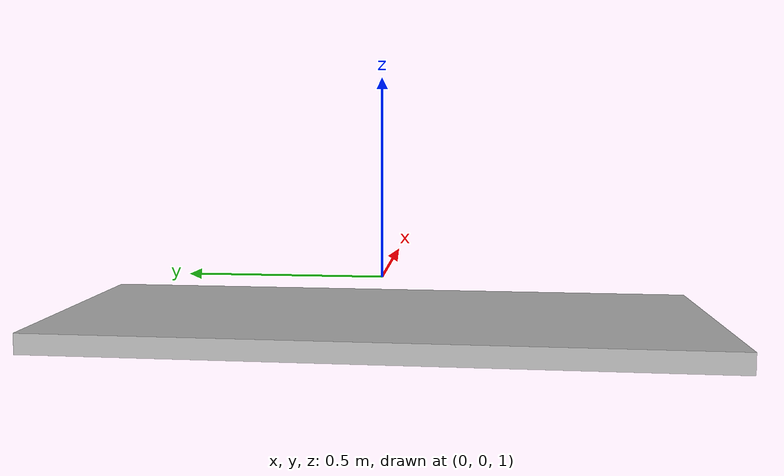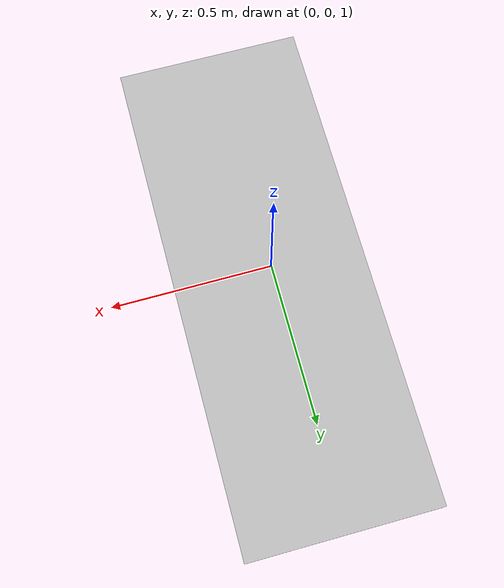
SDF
<?xml version="1.0"?>
<sdf version="1.6">
  <model name="rwc2018/counter">
    <link name="1_link">
      <collision name="1_col">
        <geometry>
          <box>
            <size>0.61 1.63 0.05</size>
          </box>
        </geometry>
      </collision>
      <visual name="1_vis">
        <geometry>
          <box>
            <size>0.61 1.63 0.05</size>
          </box>
        </geometry>
      </visual>
      <pose>0 0 0.885 0 0 0</pose>
    </link>
    <link name="on_top_of">
      <virtual_volume name="on_top_of_vv">
        <geometry>
          <box>
            <size>0.55 1.6 0.25</size>
          </box>
        </geometry>
        <pose>0.0 0.0 1.055 0 0 0</pose>
      </virtual_volume>
    </link>
    <link name="in_front_of">
      <virtual_volume name="in_front_of_vv">
        <geometry>
          <box>
            <size>0.4 1.3 0.01</size>
          </box>
        </geometry>
        <pose>0.8 0.0 0.005 0 0 0</pose>
      </virtual_volume>
    </link>
    <static>true</static>
  </model>
</sdf>
